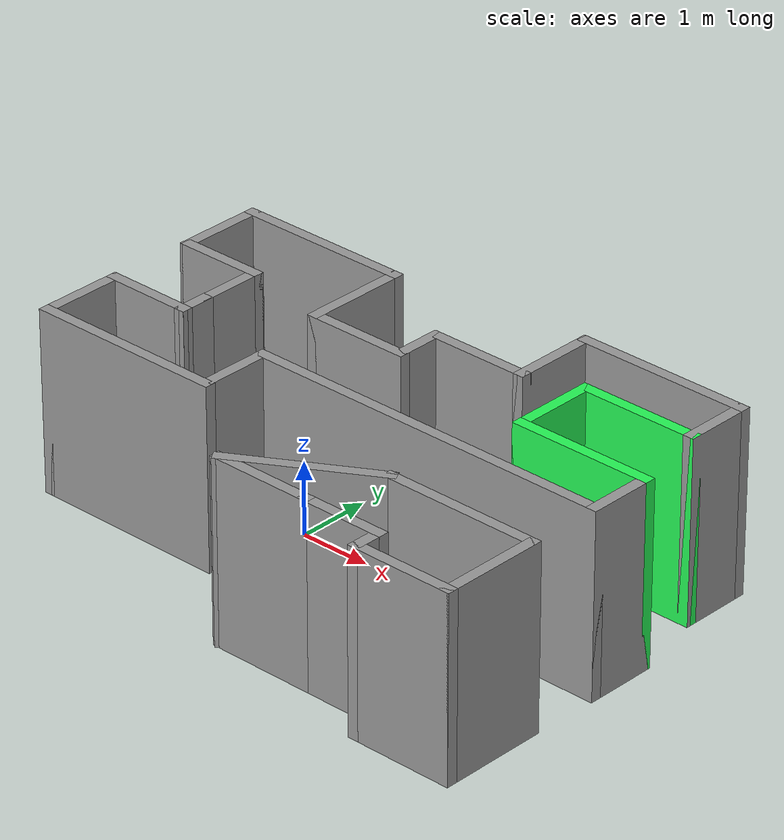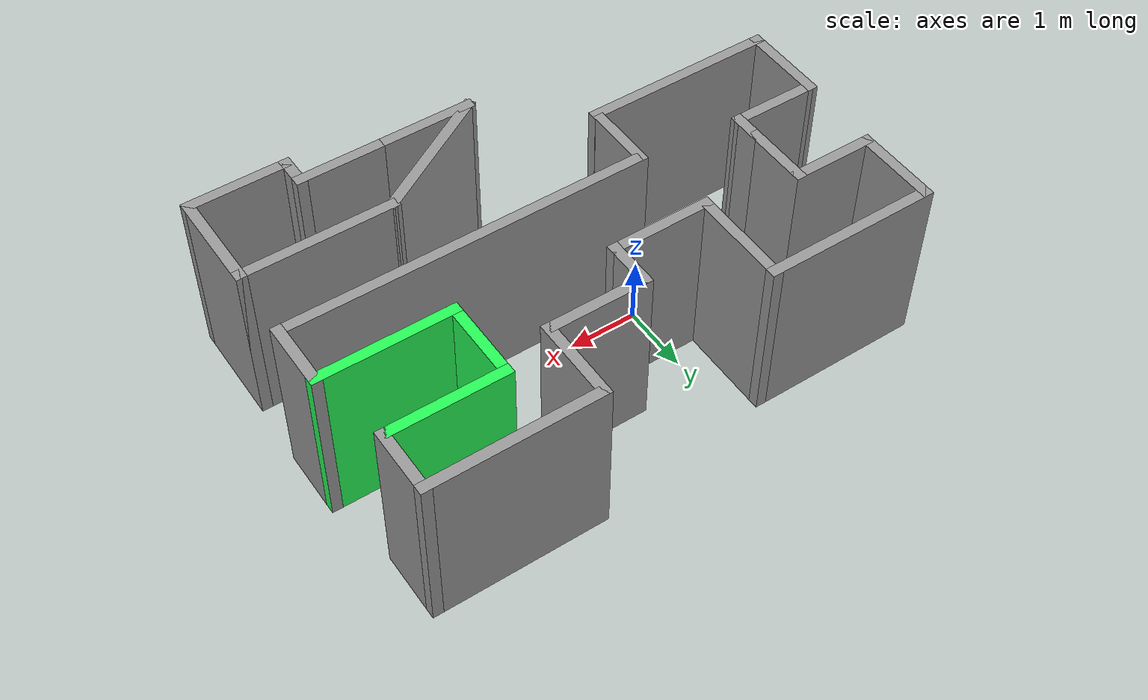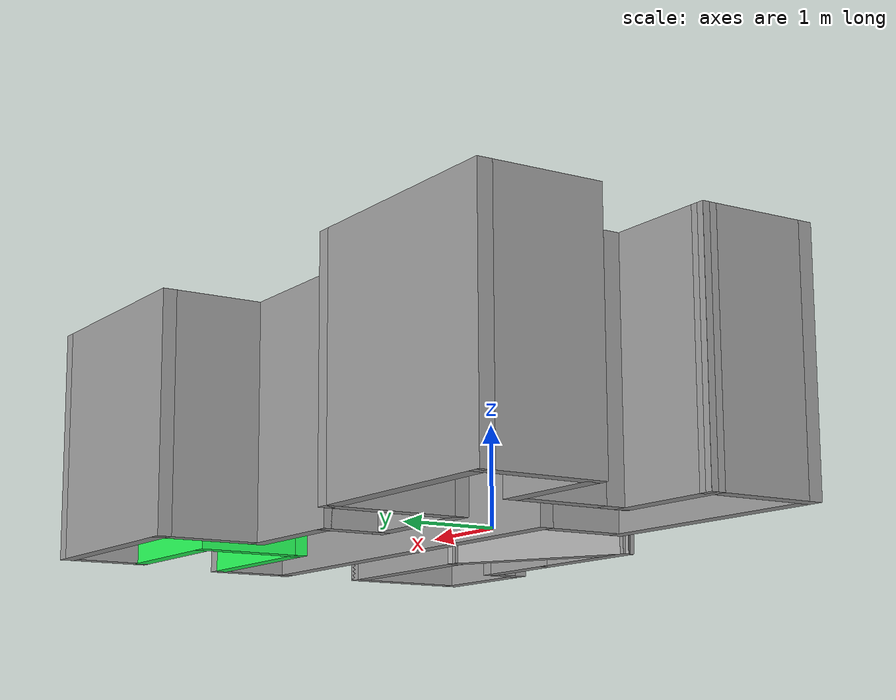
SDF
<?xml version='1.0'?>
<sdf version='1.7'>
  <model name='open_maze_3'>
    <pose>0.971644 -0.167403 0 0 -0 0</pose>
    <link name='Wall_10'>
      <collision name='Wall_10_Collision'>
        <geometry>
          <box>
            <size>1.5 0.15 2.5</size>
          </box>
        </geometry>
        <pose>0 0 1.25 0 -0 0</pose>
      </collision>
      <visual name='Wall_10_Visual'>
        <pose>0 0 1.25 0 -0 0</pose>
        <geometry>
          <box>
            <size>1.5 0.15 2.5</size>
          </box>
        </geometry>
        <material>
          <script>
            <uri>file://media/materials/scripts/gazebo.material</uri>
            <name>Gazebo/Grey</name>
          </script>
          <ambient>1 1 1 1</ambient>
        </material>
        <meta>
          <layer>0</layer>
        </meta>
      </visual>
      <pose>0.572797 1.48528 0 0 -0 3.14159</pose>
    </link>
    <link name='Wall_11'>
      <collision name='Wall_11_Collision'>
        <geometry>
          <box>
            <size>0.75 0.15 2.5</size>
          </box>
        </geometry>
        <pose>0 0 1.25 0 -0 0</pose>
      </collision>
      <visual name='Wall_11_Visual'>
        <pose>0 0 1.25 0 -0 0</pose>
        <geometry>
          <box>
            <size>0.75 0.15 2.5</size>
          </box>
        </geometry>
        <material>
          <script>
            <uri>file://media/materials/scripts/gazebo.material</uri>
            <name>Gazebo/Grey</name>
          </script>
          <ambient>1 1 1 1</ambient>
        </material>
        <meta>
          <layer>0</layer>
        </meta>
      </visual>
      <pose>-0.102203 1.18528 0 0 -0 -1.5708</pose>
    </link>
    <link name='Wall_12'>
      <collision name='Wall_12_Collision'>
        <geometry>
          <box>
            <size>1.5 0.15 2.5</size>
          </box>
        </geometry>
        <pose>0 0 1.25 0 -0 0</pose>
      </collision>
      <visual name='Wall_12_Visual'>
        <pose>0 0 1.25 0 -0 0</pose>
        <geometry>
          <box>
            <size>1.5 0.15 2.5</size>
          </box>
        </geometry>
        <material>
          <script>
            <uri>file://media/materials/scripts/gazebo.material</uri>
            <name>Gazebo/Grey</name>
          </script>
          <ambient>1 1 1 1</ambient>
        </material>
        <meta>
          <layer>0</layer>
        </meta>
      </visual>
      <pose>-0.777203 0.885278 0 0 -0 3.14159</pose>
    </link>
    <link name='Wall_13'>
      <collision name='Wall_13_Collision'>
        <geometry>
          <box>
            <size>1.5 0.15 2.5</size>
          </box>
        </geometry>
        <pose>0 0 1.25 0 -0 0</pose>
      </collision>
      <visual name='Wall_13_Visual'>
        <pose>0 0 1.25 0 -0 0</pose>
        <geometry>
          <box>
            <size>1.5 0.15 2.5</size>
          </box>
        </geometry>
        <material>
          <script>
            <uri>file://media/materials/scripts/gazebo.material</uri>
            <name>Gazebo/Grey</name>
          </script>
          <ambient>1 1 1 1</ambient>
        </material>
        <meta>
          <layer>0</layer>
        </meta>
      </visual>
      <pose>-1.4522 1.56028 0 0 -0 1.5708</pose>
    </link>
    <link name='Wall_14'>
      <collision name='Wall_14_Collision'>
        <geometry>
          <box>
            <size>2.5 0.15 2.5</size>
          </box>
        </geometry>
        <pose>0 0 1.25 0 -0 0</pose>
      </collision>
      <visual name='Wall_14_Visual'>
        <pose>0 0 1.25 0 -0 0</pose>
        <geometry>
          <box>
            <size>2.5 0.15 2.5</size>
          </box>
        </geometry>
        <material>
          <script>
            <uri>file://media/materials/scripts/gazebo.material</uri>
            <name>Gazebo/Grey</name>
          </script>
          <ambient>1 1 1 1</ambient>
        </material>
        <meta>
          <layer>0</layer>
        </meta>
      </visual>
      <pose>-2.6272 2.23528 0 0 -0 3.14159</pose>
    </link>
    <link name='Wall_15'>
      <collision name='Wall_15_Collision'>
        <geometry>
          <box>
            <size>1.25 0.15 2.5</size>
          </box>
        </geometry>
        <pose>0 0 1.25 0 -0 0</pose>
      </collision>
      <visual name='Wall_15_Visual'>
        <pose>0 0 1.25 0 -0 0</pose>
        <geometry>
          <box>
            <size>1.25 0.15 2.5</size>
          </box>
        </geometry>
        <material>
          <script>
            <uri>file://media/materials/scripts/gazebo.material</uri>
            <name>Gazebo/Grey</name>
          </script>
          <ambient>1 1 1 1</ambient>
        </material>
        <meta>
          <layer>0</layer>
        </meta>
      </visual>
      <pose>-3.8022 1.68528 0 0 -0 -1.5708</pose>
    </link>
    <link name='Wall_16'>
      <collision name='Wall_16_Collision'>
        <geometry>
          <box>
            <size>1.25 0.15 2.5</size>
          </box>
        </geometry>
        <pose>0 0 1.25 0 -0 0</pose>
      </collision>
      <visual name='Wall_16_Visual'>
        <pose>0 0 1.25 0 -0 0</pose>
        <geometry>
          <box>
            <size>1.25 0.15 2.5</size>
          </box>
        </geometry>
        <material>
          <script>
            <uri>file://media/materials/scripts/gazebo.material</uri>
            <name>Gazebo/Grey</name>
          </script>
          <ambient>1 1 1 1</ambient>
        </material>
        <meta>
          <layer>0</layer>
        </meta>
      </visual>
      <pose>-3.2522 1.13528 0 0 -0 0</pose>
    </link>
    <link name='Wall_17'>
      <collision name='Wall_17_Collision'>
        <geometry>
          <box>
            <size>1 0.15 2.5</size>
          </box>
        </geometry>
        <pose>0 0 1.25 0 -0 0</pose>
      </collision>
      <visual name='Wall_17_Visual'>
        <pose>0 0 1.25 0 -0 0</pose>
        <geometry>
          <box>
            <size>1 0.15 2.5</size>
          </box>
        </geometry>
        <material>
          <script>
            <uri>file://media/materials/scripts/gazebo.material</uri>
            <name>Gazebo/Grey</name>
          </script>
          <ambient>1 1 1 1</ambient>
        </material>
        <meta>
          <layer>0</layer>
        </meta>
      </visual>
      <pose>-2.7022 0.710278 0 0 -0 -1.5708</pose>
    </link>
    <link name='Wall_18'>
      <collision name='Wall_18_Collision'>
        <geometry>
          <box>
            <size>0.5 0.15 2.5</size>
          </box>
        </geometry>
        <pose>0 0 1.25 0 -0 0</pose>
      </collision>
      <visual name='Wall_18_Visual'>
        <pose>0 0 1.25 0 -0 0</pose>
        <geometry>
          <box>
            <size>0.5 0.15 2.5</size>
          </box>
        </geometry>
        <material>
          <script>
            <uri>file://media/materials/scripts/gazebo.material</uri>
            <name>Gazebo/Grey</name>
          </script>
          <ambient>1 1 1 1</ambient>
        </material>
        <meta>
          <layer>0</layer>
        </meta>
      </visual>
      <pose>-2.7022 0.110278 0 0 -0 -1.5708</pose>
    </link>
    <link name='Wall_3'>
      <collision name='Wall_3_Collision'>
        <geometry>
          <box>
            <size>1 0.15 2.5</size>
          </box>
        </geometry>
        <pose>0 0 1.25 0 -0 0</pose>
      </collision>
      <visual name='Wall_3_Visual'>
        <pose>0 0 1.25 0 -0 0</pose>
        <geometry>
          <box>
            <size>1 0.15 2.5</size>
          </box>
        </geometry>
        <material>
          <script>
            <uri>file://media/materials/scripts/gazebo.material</uri>
            <name>Gazebo/Grey</name>
          </script>
          <ambient>1 1 1 1</ambient>
        </material>
        <meta>
          <layer>0</layer>
        </meta>
      </visual>
      <pose>3.8478 0.210278 0 0 -0 1.5708</pose>
    </link>
    <link name='Wall_4'>
      <collision name='Wall_4_Collision'>
        <geometry>
          <box>
            <size>2 0.15 2.5</size>
          </box>
        </geometry>
        <pose>0 0 1.25 0 -0 0</pose>
      </collision>
      <visual name='Wall_4_Visual'>
        <pose>0 0 1.25 0 -0 0</pose>
        <geometry>
          <box>
            <size>2 0.15 2.5</size>
          </box>
        </geometry>
        <material>
          <script>
            <uri>file://media/materials/scripts/gazebo.material</uri>
            <name>Gazebo/Grey</name>
          </script>
          <ambient>0.145098 0.976471 0.337255 1</ambient>
        </material>
        <meta>
          <layer>0</layer>
        </meta>
      </visual>
      <pose>2.9228 0.635278 0 0 -0 3.14159</pose>
    </link>
    <link name='Wall_5'>
      <collision name='Wall_5_Collision'>
        <geometry>
          <box>
            <size>1.25 0.15 2.5</size>
          </box>
        </geometry>
        <pose>0 0 1.25 0 -0 0</pose>
      </collision>
      <visual name='Wall_5_Visual'>
        <pose>0 0 1.25 0 -0 0</pose>
        <geometry>
          <box>
            <size>1.25 0.15 2.5</size>
          </box>
        </geometry>
        <material>
          <script>
            <uri>file://media/materials/scripts/gazebo.material</uri>
            <name>Gazebo/Grey</name>
          </script>
          <ambient>0.145098 0.976471 0.337255 1</ambient>
        </material>
        <meta>
          <layer>0</layer>
        </meta>
      </visual>
      <pose>1.9978 1.18528 0 0 -0 1.5708</pose>
    </link>
    <link name='Wall_6'>
      <collision name='Wall_6_Collision'>
        <geometry>
          <box>
            <size>1.75 0.15 2.5</size>
          </box>
        </geometry>
        <pose>0 0 1.25 0 -0 0</pose>
      </collision>
      <visual name='Wall_6_Visual'>
        <pose>0 0 1.25 0 -0 0</pose>
        <geometry>
          <box>
            <size>1.75 0.15 2.5</size>
          </box>
        </geometry>
        <material>
          <script>
            <uri>file://media/materials/scripts/gazebo.material</uri>
            <name>Gazebo/Grey</name>
          </script>
          <ambient>0.145098 0.976471 0.337255 1</ambient>
        </material>
        <meta>
          <layer>0</layer>
        </meta>
      </visual>
      <pose>2.7978 1.73528 0 0 -0 0</pose>
    </link>
    <link name='Wall_65'>
      <collision name='Wall_65_Collision'>
        <geometry>
          <box>
            <size>5.25 0.15 2.5</size>
          </box>
        </geometry>
        <pose>0 0 1.25 0 -0 0</pose>
      </collision>
      <visual name='Wall_65_Visual'>
        <pose>0 0 1.25 0 -0 0</pose>
        <geometry>
          <box>
            <size>5.25 0.15 2.5</size>
          </box>
        </geometry>
        <material>
          <script>
            <uri>file://media/materials/scripts/gazebo.material</uri>
            <name>Gazebo/Grey</name>
          </script>
          <ambient>1 1 1 1</ambient>
        </material>
        <meta>
          <layer>0</layer>
        </meta>
      </visual>
      <pose>1.2978 -0.214722 0 0 -0 3.14159</pose>
    </link>
    <link name='Wall_66'>
      <collision name='Wall_66_Collision'>
        <geometry>
          <box>
            <size>1 0.15 2.5</size>
          </box>
        </geometry>
        <pose>0 0 1.25 0 -0 0</pose>
      </collision>
      <visual name='Wall_66_Visual'>
        <pose>0 0 1.25 0 -0 0</pose>
        <geometry>
          <box>
            <size>1 0.15 2.5</size>
          </box>
        </geometry>
        <material>
          <script>
            <uri>file://media/materials/scripts/gazebo.material</uri>
            <name>Gazebo/Grey</name>
          </script>
          <ambient>1 1 1 1</ambient>
        </material>
        <meta>
          <layer>0</layer>
        </meta>
      </visual>
      <pose>-1.2522 -0.639722 0 0 -0 -1.5708</pose>
    </link>
    <link name='Wall_69'>
      <collision name='Wall_69_Collision'>
        <geometry>
          <box>
            <size>2.75 0.15 2.5</size>
          </box>
        </geometry>
        <pose>0 0 1.25 0 -0 0</pose>
      </collision>
      <visual name='Wall_69_Visual'>
        <pose>0 0 1.25 0 -0 0</pose>
        <geometry>
          <box>
            <size>2.75 0.15 2.5</size>
          </box>
        </geometry>
        <material>
          <script>
            <uri>file://media/materials/scripts/gazebo.material</uri>
            <name>Gazebo/Grey</name>
          </script>
          <ambient>1 1 1 1</ambient>
        </material>
        <meta>
          <layer>0</layer>
        </meta>
      </visual>
      <pose>-2.54743 -1.15907 0 0 -0 0</pose>
    </link>
    <link name='Wall_7'>
      <collision name='Wall_7_Collision'>
        <geometry>
          <box>
            <size>1 0.15 2.5</size>
          </box>
        </geometry>
        <pose>0 0 1.25 0 -0 0</pose>
      </collision>
      <visual name='Wall_7_Visual'>
        <pose>0 0 1.25 0 -0 0</pose>
        <geometry>
          <box>
            <size>1 0.15 2.5</size>
          </box>
        </geometry>
        <material>
          <script>
            <uri>file://media/materials/scripts/gazebo.material</uri>
            <name>Gazebo/Grey</name>
          </script>
          <ambient>1 1 1 1</ambient>
        </material>
        <meta>
          <layer>0</layer>
        </meta>
      </visual>
      <pose>3.5978 2.16028 0 0 -0 1.5708</pose>
    </link>
    <link name='Wall_71'>
      <collision name='Wall_71_Collision'>
        <geometry>
          <box>
            <size>1.25 0.15 2.5</size>
          </box>
        </geometry>
        <pose>0 0 1.25 0 -0 0</pose>
      </collision>
      <visual name='Wall_71_Visual'>
        <pose>0 0 1.25 0 -0 0</pose>
        <geometry>
          <box>
            <size>1.25 0.15 2.5</size>
          </box>
        </geometry>
        <material>
          <script>
            <uri>file://media/materials/scripts/gazebo.material</uri>
            <name>Gazebo/Grey</name>
          </script>
          <ambient>1 1 1 1</ambient>
        </material>
        <meta>
          <layer>0</layer>
        </meta>
      </visual>
      <pose>-3.84743 -0.609068 0 0 -0 1.5708</pose>
    </link>
    <link name='Wall_72'>
      <collision name='Wall_72_Collision'>
        <geometry>
          <box>
            <size>1.29524 0.15 2.5</size>
          </box>
        </geometry>
        <pose>0 0 1.25 0 -0 0</pose>
      </collision>
      <visual name='Wall_72_Visual'>
        <pose>0 0 1.25 0 -0 0</pose>
        <geometry>
          <box>
            <size>1.29524 0.15 2.5</size>
          </box>
        </geometry>
        <material>
          <script>
            <uri>file://media/materials/scripts/gazebo.material</uri>
            <name>Gazebo/Grey</name>
          </script>
          <ambient>1 1 1 1</ambient>
        </material>
        <meta>
          <layer>0</layer>
        </meta>
      </visual>
      <pose>-3.27482 -0.061895 0 0 -0 -0.004936</pose>
    </link>
    <link name='Wall_74'>
      <collision name='Wall_74_Collision'>
        <geometry>
          <box>
            <size>2.25 0.15 2.5</size>
          </box>
        </geometry>
        <pose>0 0 1.25 0 -0 0</pose>
      </collision>
      <visual name='Wall_74_Visual'>
        <pose>0 0 1.25 0 -0 0</pose>
        <geometry>
          <box>
            <size>2.25 0.15 2.5</size>
          </box>
        </geometry>
        <material>
          <script>
            <uri>file://media/materials/scripts/gazebo.material</uri>
            <name>Gazebo/Grey</name>
          </script>
          <ambient>1 1 1 1</ambient>
        </material>
        <meta>
          <layer>0</layer>
        </meta>
      </visual>
      <pose>2.77472 -1.23528 0 0 -0 0</pose>
    </link>
    <link name='Wall_75'>
      <collision name='Wall_75_Collision'>
        <geometry>
          <box>
            <size>1.5 0.15 2.5</size>
          </box>
        </geometry>
        <pose>0 0 1.25 0 -0 0</pose>
      </collision>
      <visual name='Wall_75_Visual'>
        <pose>0 0 1.25 0 -0 0</pose>
        <geometry>
          <box>
            <size>1.5 0.15 2.5</size>
          </box>
        </geometry>
        <material>
          <script>
            <uri>file://media/materials/scripts/gazebo.material</uri>
            <name>Gazebo/Grey</name>
          </script>
          <ambient>1 1 1 1</ambient>
        </material>
        <meta>
          <layer>0</layer>
        </meta>
      </visual>
      <pose>3.82472 -1.91028 0 0 -0 -1.5708</pose>
    </link>
    <link name='Wall_76'>
      <collision name='Wall_76_Collision'>
        <geometry>
          <box>
            <size>1.5 0.15 2.5</size>
          </box>
        </geometry>
        <pose>0 0 1.25 0 -0 0</pose>
      </collision>
      <visual name='Wall_76_Visual'>
        <pose>0 0 1.25 0 -0 0</pose>
        <geometry>
          <box>
            <size>1.5 0.15 2.5</size>
          </box>
        </geometry>
        <material>
          <script>
            <uri>file://media/materials/scripts/gazebo.material</uri>
            <name>Gazebo/Grey</name>
          </script>
          <ambient>1 1 1 1</ambient>
        </material>
        <meta>
          <layer>0</layer>
        </meta>
      </visual>
      <pose>3.14972 -2.58528 0 0 -0 3.14159</pose>
    </link>
    <link name='Wall_77'>
      <collision name='Wall_77_Collision'>
        <geometry>
          <box>
            <size>0.5 0.15 2.5</size>
          </box>
        </geometry>
        <pose>0 0 1.25 0 -0 0</pose>
      </collision>
      <visual name='Wall_77_Visual'>
        <pose>0 0 1.25 0 -0 0</pose>
        <geometry>
          <box>
            <size>0.5 0.15 2.5</size>
          </box>
        </geometry>
        <material>
          <script>
            <uri>file://media/materials/scripts/gazebo.material</uri>
            <name>Gazebo/Grey</name>
          </script>
          <ambient>1 1 1 1</ambient>
        </material>
        <meta>
          <layer>0</layer>
        </meta>
      </visual>
      <pose>2.47472 -2.41028 0 0 -0 1.5708</pose>
    </link>
    <link name='Wall_78'>
      <collision name='Wall_78_Collision'>
        <geometry>
          <box>
            <size>1.25 0.15 2.5</size>
          </box>
        </geometry>
        <pose>0 0 1.25 0 -0 0</pose>
      </collision>
      <visual name='Wall_78_Visual'>
        <pose>0 0 1.25 0 -0 0</pose>
        <geometry>
          <box>
            <size>1.25 0.15 2.5</size>
          </box>
        </geometry>
        <material>
          <script>
            <uri>file://media/materials/scripts/gazebo.material</uri>
            <name>Gazebo/Grey</name>
          </script>
          <ambient>1 1 1 1</ambient>
        </material>
        <meta>
          <layer>0</layer>
        </meta>
      </visual>
      <pose>1.92472 -2.23528 0 0 -0 3.14159</pose>
    </link>
    <link name='Wall_79'>
      <collision name='Wall_79_Collision'>
        <geometry>
          <box>
            <size>1.5 0.15 2.5</size>
          </box>
        </geometry>
        <pose>0 0 1.25 0 -0 0</pose>
      </collision>
      <visual name='Wall_79_Visual'>
        <pose>0 0 1.25 0 -0 0</pose>
        <geometry>
          <box>
            <size>1.5 0.15 2.5</size>
          </box>
        </geometry>
        <material>
          <script>
            <uri>file://media/materials/scripts/gazebo.material</uri>
            <name>Gazebo/Grey</name>
          </script>
          <ambient>1 1 1 1</ambient>
        </material>
        <meta>
          <layer>0</layer>
        </meta>
      </visual>
      <pose>0.699723 -2.23528 0 0 -0 3.14159</pose>
    </link>
    <link name='Wall_8'>
      <collision name='Wall_8_Collision'>
        <geometry>
          <box>
            <size>2.5 0.15 2.5</size>
          </box>
        </geometry>
        <pose>0 0 1.25 0 -0 0</pose>
      </collision>
      <visual name='Wall_8_Visual'>
        <pose>0 0 1.25 0 -0 0</pose>
        <geometry>
          <box>
            <size>2.5 0.15 2.5</size>
          </box>
        </geometry>
        <material>
          <script>
            <uri>file://media/materials/scripts/gazebo.material</uri>
            <name>Gazebo/Grey</name>
          </script>
          <ambient>1 1 1 1</ambient>
        </material>
        <meta>
          <layer>0</layer>
        </meta>
      </visual>
      <pose>2.4228 2.58528 0 0 -0 3.14159</pose>
    </link>
    <link name='Wall_80'>
      <collision name='Wall_80_Collision'>
        <geometry>
          <box>
            <size>2.12231 0.15 2.5</size>
          </box>
        </geometry>
        <pose>0 0 1.25 0 -0 0</pose>
      </collision>
      <visual name='Wall_80_Visual'>
        <pose>0 0 1.25 0 -0 0</pose>
        <geometry>
          <box>
            <size>2.12231 0.15 2.5</size>
          </box>
        </geometry>
        <material>
          <script>
            <uri>file://media/materials/scripts/gazebo.material</uri>
            <name>Gazebo/Grey</name>
          </script>
          <ambient>1 1 1 1</ambient>
        </material>
        <meta>
          <layer>0</layer>
        </meta>
      </visual>
      <pose>0.874723 -1.73528 0 0 -0 0.531724</pose>
    </link>
    <link name='Wall_9'>
      <collision name='Wall_9_Collision'>
        <geometry>
          <box>
            <size>1.25 0.15 2.5</size>
          </box>
        </geometry>
        <pose>0 0 1.25 0 -0 0</pose>
      </collision>
      <visual name='Wall_9_Visual'>
        <pose>0 0 1.25 0 -0 0</pose>
        <geometry>
          <box>
            <size>1.25 0.15 2.5</size>
          </box>
        </geometry>
        <material>
          <script>
            <uri>file://media/materials/scripts/gazebo.material</uri>
            <name>Gazebo/Grey</name>
          </script>
          <ambient>1 1 1 1</ambient>
        </material>
        <meta>
          <layer>0</layer>
        </meta>
      </visual>
      <pose>1.2478 2.03528 0 0 -0 -1.5708</pose>
    </link>
    <static>1</static>
  </model>
</sdf>
